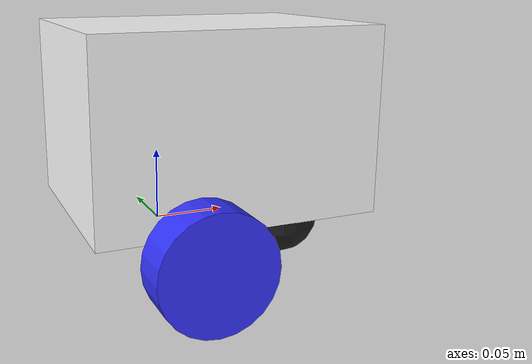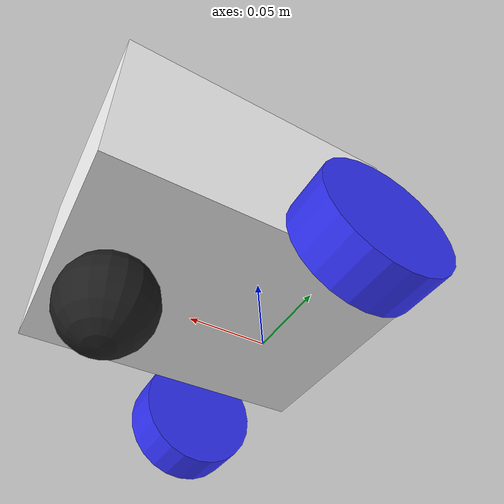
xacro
<?xml version="1.0"?>
<robot xmlns:xacro="http://www.ros.org/wiki/xacro"  >

    <xacro:include filename="inertial_macros.xacro"/>

    <material name="white">
        <color rgba="1 1 1 1" />
    </material>

    <material name="orange">
        <color rgba="1 0.3 0.1 1" />
    </material>

    <material name="blue">
        <color rgba="0.2 0.2 1 1" />
    </material>

    <material name="black">
        <color rgba="0 0 0 1" />
    </material>

    <material name="red">
        <color rgba="1 0 0 1" />
    </material>

    <!-- BASE LINK -->

    <link name="base_link">

    </link>

    <joint name="chassis_joint" type="fixed">
        <parent link="base_link"/>
        <child link="chassis"/>
        <origin xyz="-0.04 0 0"/>
    </joint>

    <!-- CHASSIS LINK -->

    <link name="chassis">
        <visual>
            <origin xyz="0.075 0 0.075"/>
            <geometry>
                <box size="0.2 0.15 0.13"/>
            </geometry>
            <material name="white"/>
        </visual>
        <collision>
            <origin xyz="0.075 0 0.075"/>
            <geometry>
                <box size="0.2 0.15 0.13"/>
            </geometry>
        </collision>
        <xacro:inertial_box mass="0.5" x="0.2" y="0.15" z="0.13">
            <origin xyz="0.075 0 0.075" rpy="0 0 0"/>
        </xacro:inertial_box>
    </link>

    <gazebo reference="chassis">
        <material>Gazebo/White</material>
    </gazebo>

    <!-- LEFT WHEEL LINK-->

    <joint name="left_wheel_joint" type="continuous">
        <parent link="base_link"/>
        <child link="left_wheel"/>
        <origin xyz="0 0.100 0" rpy="-${pi/2} 0 0"/>
        <axis xyz="0 0 1"/>
    </joint>

    <link name="left_wheel">
        <visual>
            <geometry>
                <cylinder radius="0.04" length="0.03"/>
            </geometry>
            <material name="blue"/>
        </visual>
        <collision>
            <geometry>
                <cylinder radius="0.04" length="0.03"/>
            </geometry>
        </collision>
        <xacro:inertial_cylinder mass="0.1" length="0.03" radius="0.04">
            <origin xyz="0 0 0" rpy="0 0 0"/>
        </xacro:inertial_cylinder>
    </link>

    <gazebo reference="left_wheel">
        <material>Gazebo/Blue</material>
    </gazebo>

    <!-- RIGHT WHEEL LINK-->

    <joint name="right_wheel_joint" type="continuous">
        <parent link="base_link"/>
        <child link="right_wheel"/>
        <origin xyz="0 -0.100 0" rpy="${pi/2} 0 0"/>
        <axis xyz="0 0 -1"/>
    </joint>

    <link name="right_wheel">
        <visual>
            <geometry>
                <cylinder radius="0.04" length="0.03"/>
            </geometry>
            <material name="blue"/>
        </visual>
        <collision>
            <geometry>
                <cylinder radius="0.04" length="0.03"/>
            </geometry>
        </collision>
        <xacro:inertial_cylinder mass="0.1" length="0.03" radius="0.04">
            <origin xyz="0 0 0" rpy="0 0 0"/>
        </xacro:inertial_cylinder>
    </link>

    <gazebo reference="right_wheel">
        <material>Gazebo/Blue</material>
    </gazebo>

    <!-- CASTER WHEEL LINK -->

    <joint name="caster_wheel_joint" type="fixed">
        <parent link="chassis"/>
        <child link="caster_wheel"/>
        <origin xyz="0.14 0 -0.01"/>
    </joint>

    <link name="caster_wheel">
        <visual>
            <geometry>
                <sphere radius="0.03"/>
                <material name="black"/>
            </geometry>
        </visual>
        <collision>
            <geometry>
                <sphere radius="0.03"/>
            </geometry>
        </collision>
        <xacro:inertial_sphere mass="0.1" radius="0.03">
            <origin xyz="0 0 0" rpy="0 0 0"/>
        </xacro:inertial_sphere>
    </link>

    <gazebo reference="caster_wheel">
        <material>Gazebo/Black</material>
        <mu1 value="0.001"/>
        <mu2 value="0.001"/>
    </gazebo>

</robot>
